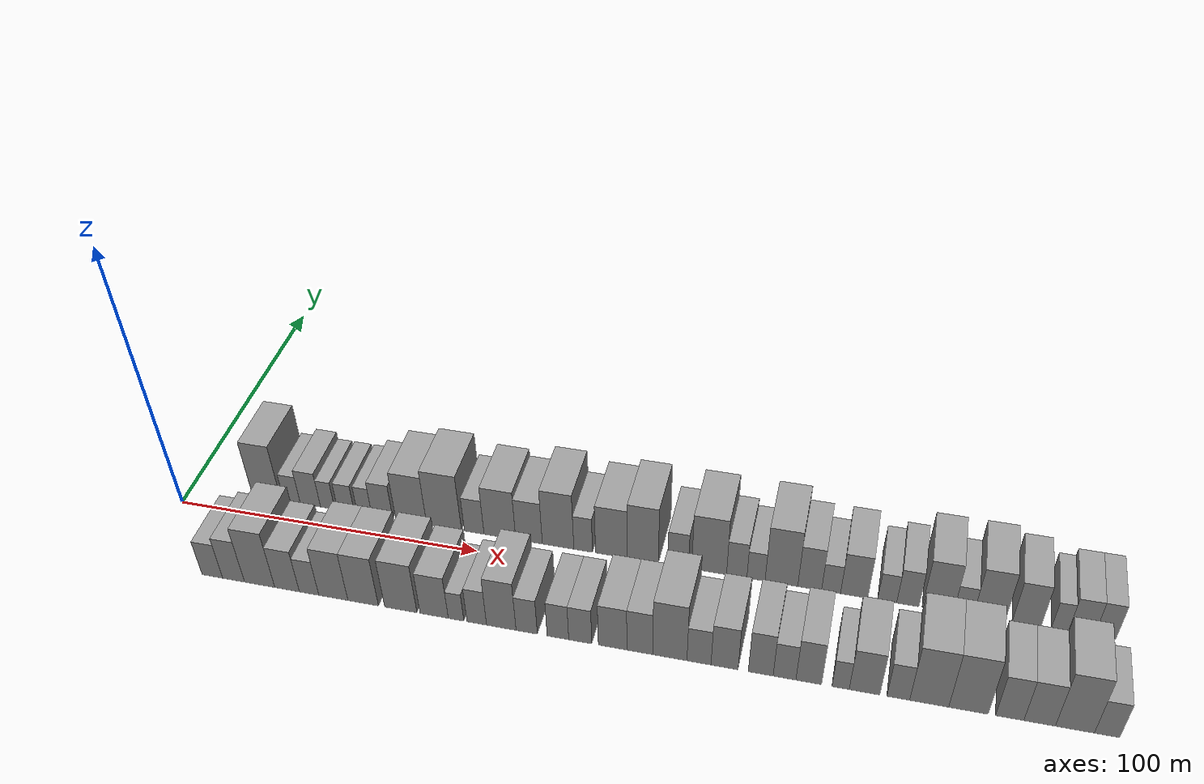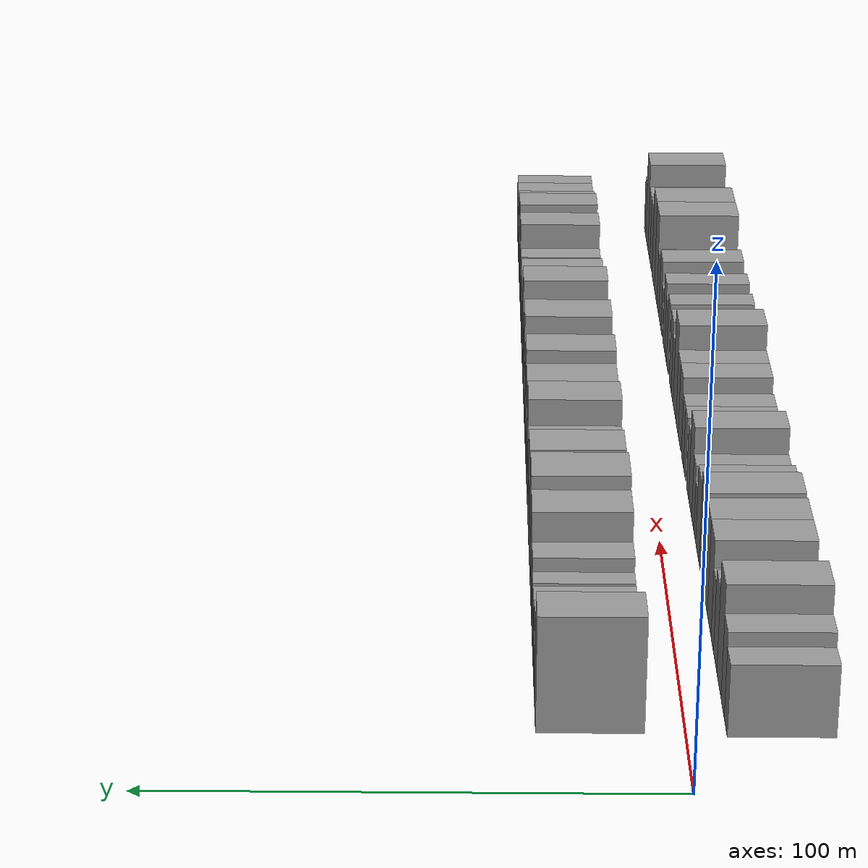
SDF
<sdf version="1.6">
 <world name="default">
  <scene>
   <sky><clouds><speed>12</speed></clouds></sky>
   <ambient>0.4 0.4 0.4 1</ambient>
   <background>0.7 0.7 0.7 1</background>
   <shadows>1</shadows>
  </scene>
  <gravity>0 0 -9.8066</gravity>
  <magnetic_field>6e-06 2.3e-05 -4.2e-05</magnetic_field>
  <physics default="0" name="default_physics" type="ode">
   <ode>
    <solver>
     <type>quick</type>
     <iters>10</iters>
     <sor>1.0</sor>
     <use_dynamic_moi_rescaling>0</use_dynamic_moi_rescaling>
    </solver>
    <constraints>
     <cfm>0</cfm>
     <erp>0.2</erp>
     <contact_max_correcting_vel>100</contact_max_correcting_vel>
     <contact_surface_layer>0.001</contact_surface_layer>
    </constraints>
   </ode>
   <max_step_size>0.004</max_step_size>
   <real_time_factor>1</real_time_factor>
   <real_time_update_rate>250</real_time_update_rate>
  </physics>
  <light name="sun" type="directional">
   <pose>0 0 10 0 0 0</pose>
   <diffuse>0.8 0.8 0.8 1</diffuse>
   <specular>0.2 0.2 0.2 1</specular>
   <attenuation>
    <range>1000</range>
    <constant>0.9</constant>
    <linear>0.01</linear>
    <quadratic>0.001</quadratic>
   </attenuation>
   <direction>-0.5 0.1 -0.9</direction>
  </light>
  <model name="building_1">
   <static>1</static>
   <pose>25.9712 17.5000 0 0.000000 0.000000 1.570796</pose>
   <link name="link">
    <pose>0 0 12.00 0 0 0</pose>
    <collision name="collision"><geometry><box><size>20.0000 9.9424 24.0000</size></box></geometry></collision>
    <visual name="visual">
     <cast_shadows>0</cast_shadows>
     <geometry><box><size>20.0000 9.9424 24.0000</size></box></geometry>
     <material>
      <script>
       <uri>model://grey_wall/materials/scripts</uri>
       <uri>model://grey_wall/materials/textures</uri>
       <name>vrc/grey_wall</name>
      </script>
     </material>
    </visual>
   </link>
  </model>
  <model name="building_2">
   <static>1</static>
   <pose>34.8163 17.5000 0 0.000000 0.000000 1.570796</pose>
   <link name="link">
    <pose>0 0 6.00 0 0 0</pose>
    <collision name="collision"><geometry><box><size>20.0000 5.7477 12.0000</size></box></geometry></collision>
    <visual name="visual">
     <cast_shadows>0</cast_shadows>
     <geometry><box><size>20.0000 5.7477 12.0000</size></box></geometry>
     <material>
      <script>
       <uri>model://grey_wall/materials/scripts</uri>
       <uri>model://grey_wall/materials/textures</uri>
       <name>vrc/grey_wall</name>
      </script>
     </material>
    </visual>
   </link>
  </model>
  <model name="building_3">
   <static>1</static>
   <pose>41.1859 17.5000 0 0.000000 0.000000 1.570796</pose>
   <link name="link">
    <pose>0 0 7.50 0 0 0</pose>
    <collision name="collision"><geometry><box><size>20.0000 6.9916 15.0000</size></box></geometry></collision>
    <visual name="visual">
     <cast_shadows>0</cast_shadows>
     <geometry><box><size>20.0000 6.9916 15.0000</size></box></geometry>
     <material>
      <script>
       <uri>model://grey_wall/materials/scripts</uri>
       <uri>model://grey_wall/materials/textures</uri>
       <name>vrc/grey_wall</name>
      </script>
     </material>
    </visual>
   </link>
  </model>
  <model name="building_4">
   <static>1</static>
   <pose>47.1388 17.5000 0 0.000000 0.000000 1.570796</pose>
   <link name="link">
    <pose>0 0 6.00 0 0 0</pose>
    <collision name="collision"><geometry><box><size>20.0000 4.9142 12.0000</size></box></geometry></collision>
    <visual name="visual">
     <cast_shadows>0</cast_shadows>
     <geometry><box><size>20.0000 4.9142 12.0000</size></box></geometry>
     <material>
      <script>
       <uri>model://grey_wall/materials/scripts</uri>
       <uri>model://grey_wall/materials/textures</uri>
       <name>vrc/grey_wall</name>
      </script>
     </material>
    </visual>
   </link>
  </model>
  <model name="building_5">
   <static>1</static>
   <pose>53.4631 17.5000 0 0.000000 0.000000 1.570796</pose>
   <link name="link">
    <pose>0 0 6.00 0 0 0</pose>
    <collision name="collision"><geometry><box><size>20.0000 5.7344 12.0000</size></box></geometry></collision>
    <visual name="visual">
     <cast_shadows>0</cast_shadows>
     <geometry><box><size>20.0000 5.7344 12.0000</size></box></geometry>
     <material>
      <script>
       <uri>model://grey_wall/materials/scripts</uri>
       <uri>model://grey_wall/materials/textures</uri>
       <name>vrc/grey_wall</name>
      </script>
     </material>
    </visual>
   </link>
  </model>
  <model name="building_6">
   <static>1</static>
   <pose>59.8176 17.5000 0 0.000000 0.000000 1.570796</pose>
   <link name="link">
    <pose>0 0 6.00 0 0 0</pose>
    <collision name="collision"><geometry><box><size>20.0000 4.9748 12.0000</size></box></geometry></collision>
    <visual name="visual">
     <cast_shadows>0</cast_shadows>
     <geometry><box><size>20.0000 4.9748 12.0000</size></box></geometry>
     <material>
      <script>
       <uri>model://grey_wall/materials/scripts</uri>
       <uri>model://grey_wall/materials/textures</uri>
       <name>vrc/grey_wall</name>
      </script>
     </material>
    </visual>
   </link>
  </model>
  <model name="building_7">
   <static>1</static>
   <pose>65.8682 17.5000 0 0.000000 0.000000 1.570796</pose>
   <link name="link">
    <pose>0 0 7.50 0 0 0</pose>
    <collision name="collision"><geometry><box><size>20.0000 7.1263 15.0000</size></box></geometry></collision>
    <visual name="visual">
     <cast_shadows>0</cast_shadows>
     <geometry><box><size>20.0000 7.1263 15.0000</size></box></geometry>
     <material>
      <script>
       <uri>model://grey_wall/materials/scripts</uri>
       <uri>model://grey_wall/materials/textures</uri>
       <name>vrc/grey_wall</name>
      </script>
     </material>
    </visual>
   </link>
  </model>
  <model name="building_8">
   <static>1</static>
   <pose>75.6446 17.5000 0 0.000000 0.000000 1.570796</pose>
   <link name="link">
    <pose>0 0 10.50 0 0 0</pose>
    <collision name="collision"><geometry><box><size>20.0000 10.4266 21.0000</size></box></geometry></collision>
    <visual name="visual">
     <cast_shadows>0</cast_shadows>
     <geometry><box><size>20.0000 10.4266 21.0000</size></box></geometry>
     <material>
      <script>
       <uri>model://grey_wall/materials/scripts</uri>
       <uri>model://grey_wall/materials/textures</uri>
       <name>vrc/grey_wall</name>
      </script>
     </material>
    </visual>
   </link>
  </model>
  <model name="building_9">
   <static>1</static>
   <pose>86.6826 17.5000 0 0.000000 0.000000 1.570796</pose>
   <link name="link">
    <pose>0 0 12.00 0 0 0</pose>
    <collision name="collision"><geometry><box><size>20.0000 11.6493 24.0000</size></box></geometry></collision>
    <visual name="visual">
     <cast_shadows>0</cast_shadows>
     <geometry><box><size>20.0000 11.6493 24.0000</size></box></geometry>
     <material>
      <script>
       <uri>model://grey_wall/materials/scripts</uri>
       <uri>model://grey_wall/materials/textures</uri>
       <name>vrc/grey_wall</name>
      </script>
     </material>
    </visual>
   </link>
  </model>
  <model name="building_10">
   <static>1</static>
   <pose>96.7625 17.5000 0 0.000000 0.000000 1.570796</pose>
   <link name="link">
    <pose>0 0 7.50 0 0 0</pose>
    <collision name="collision"><geometry><box><size>20.0000 6.5105 15.0000</size></box></geometry></collision>
    <visual name="visual">
     <cast_shadows>0</cast_shadows>
     <geometry><box><size>20.0000 6.5105 15.0000</size></box></geometry>
     <material>
      <script>
       <uri>model://grey_wall/materials/scripts</uri>
       <uri>model://grey_wall/materials/textures</uri>
       <name>vrc/grey_wall</name>
      </script>
     </material>
    </visual>
   </link>
  </model>
  <model name="building_11">
   <static>1</static>
   <pose>105.2571 17.5000 0 0.000000 0.000000 1.570796</pose>
   <link name="link">
    <pose>0 0 10.50 0 0 0</pose>
    <collision name="collision"><geometry><box><size>20.0000 10.4787 21.0000</size></box></geometry></collision>
    <visual name="visual">
     <cast_shadows>0</cast_shadows>
     <geometry><box><size>20.0000 10.4787 21.0000</size></box></geometry>
     <material>
      <script>
       <uri>model://grey_wall/materials/scripts</uri>
       <uri>model://grey_wall/materials/textures</uri>
       <name>vrc/grey_wall</name>
      </script>
     </material>
    </visual>
   </link>
  </model>
  <model name="building_12">
   <static>1</static>
   <pose>114.8549 17.5000 0 0.000000 0.000000 1.570796</pose>
   <link name="link">
    <pose>0 0 9.00 0 0 0</pose>
    <collision name="collision"><geometry><box><size>20.0000 8.7168 18.0000</size></box></geometry></collision>
    <visual name="visual">
     <cast_shadows>0</cast_shadows>
     <geometry><box><size>20.0000 8.7168 18.0000</size></box></geometry>
     <material>
      <script>
       <uri>model://grey_wall/materials/scripts</uri>
       <uri>model://grey_wall/materials/textures</uri>
       <name>vrc/grey_wall</name>
      </script>
     </material>
    </visual>
   </link>
  </model>
  <model name="building_13">
   <static>1</static>
   <pose>124.3384 17.5000 0 0.000000 0.000000 1.570796</pose>
   <link name="link">
    <pose>0 0 12.00 0 0 0</pose>
    <collision name="collision"><geometry><box><size>20.0000 10.2502 24.0000</size></box></geometry></collision>
    <visual name="visual">
     <cast_shadows>0</cast_shadows>
     <geometry><box><size>20.0000 10.2502 24.0000</size></box></geometry>
     <material>
      <script>
       <uri>model://grey_wall/materials/scripts</uri>
       <uri>model://grey_wall/materials/textures</uri>
       <name>vrc/grey_wall</name>
      </script>
     </material>
    </visual>
   </link>
  </model>
  <model name="building_14">
   <static>1</static>
   <pose>132.4854 17.5000 0 0.000000 0.000000 1.570796</pose>
   <link name="link">
    <pose>0 0 7.50 0 0 0</pose>
    <collision name="collision"><geometry><box><size>20.0000 6.0437 15.0000</size></box></geometry></collision>
    <visual name="visual">
     <cast_shadows>0</cast_shadows>
     <geometry><box><size>20.0000 6.0437 15.0000</size></box></geometry>
     <material>
      <script>
       <uri>model://grey_wall/materials/scripts</uri>
       <uri>model://grey_wall/materials/textures</uri>
       <name>vrc/grey_wall</name>
      </script>
     </material>
    </visual>
   </link>
  </model>
  <model name="building_15">
   <static>1</static>
   <pose>141.6110 17.5000 0 0.000000 0.000000 1.570796</pose>
   <link name="link">
    <pose>0 0 10.50 0 0 0</pose>
    <collision name="collision"><geometry><box><size>20.0000 10.2076 21.0000</size></box></geometry></collision>
    <visual name="visual">
     <cast_shadows>0</cast_shadows>
     <geometry><box><size>20.0000 10.2076 21.0000</size></box></geometry>
     <material>
      <script>
       <uri>model://grey_wall/materials/scripts</uri>
       <uri>model://grey_wall/materials/textures</uri>
       <name>vrc/grey_wall</name>
      </script>
     </material>
    </visual>
   </link>
  </model>
  <model name="building_16">
   <static>1</static>
   <pose>151.6716 17.5000 0 0.000000 0.000000 1.570796</pose>
   <link name="link">
    <pose>0 0 12.00 0 0 0</pose>
    <collision name="collision"><geometry><box><size>20.0000 9.9136 24.0000</size></box></geometry></collision>
    <visual name="visual">
     <cast_shadows>0</cast_shadows>
     <geometry><box><size>20.0000 9.9136 24.0000</size></box></geometry>
     <material>
      <script>
       <uri>model://grey_wall/materials/scripts</uri>
       <uri>model://grey_wall/materials/textures</uri>
       <name>vrc/grey_wall</name>
      </script>
     </material>
    </visual>
   </link>
  </model>
  <model name="building_17">
   <static>1</static>
   <pose>162.9030 17.5000 0 0.000000 0.000000 1.570796</pose>
   <link name="link">
    <pose>0 0 7.50 0 0 0</pose>
    <collision name="collision"><geometry><box><size>20.0000 6.5493 15.0000</size></box></geometry></collision>
    <visual name="visual">
     <cast_shadows>0</cast_shadows>
     <geometry><box><size>20.0000 6.5493 15.0000</size></box></geometry>
     <material>
      <script>
       <uri>model://grey_wall/materials/scripts</uri>
       <uri>model://grey_wall/materials/textures</uri>
       <name>vrc/grey_wall</name>
      </script>
     </material>
    </visual>
   </link>
  </model>
  <model name="building_18">
   <static>1</static>
   <pose>172.6414 17.5000 0 0.000000 0.000000 1.570796</pose>
   <link name="link">
    <pose>0 0 12.00 0 0 0</pose>
    <collision name="collision"><geometry><box><size>20.0000 10.9275 24.0000</size></box></geometry></collision>
    <visual name="visual">
     <cast_shadows>0</cast_shadows>
     <geometry><box><size>20.0000 10.9275 24.0000</size></box></geometry>
     <material>
      <script>
       <uri>model://grey_wall/materials/scripts</uri>
       <uri>model://grey_wall/materials/textures</uri>
       <name>vrc/grey_wall</name>
      </script>
     </material>
    </visual>
   </link>
  </model>
  <model name="building_19">
   <static>1</static>
   <pose>181.2787 17.5000 0 0.000000 0.000000 1.570796</pose>
   <link name="link">
    <pose>0 0 7.50 0 0 0</pose>
    <collision name="collision"><geometry><box><size>20.0000 6.3471 15.0000</size></box></geometry></collision>
    <visual name="visual">
     <cast_shadows>0</cast_shadows>
     <geometry><box><size>20.0000 6.3471 15.0000</size></box></geometry>
     <material>
      <script>
       <uri>model://grey_wall/materials/scripts</uri>
       <uri>model://grey_wall/materials/textures</uri>
       <name>vrc/grey_wall</name>
      </script>
     </material>
    </visual>
   </link>
  </model>
  <model name="building_20">
   <static>1</static>
   <pose>187.2736 17.5000 0 0.000000 0.000000 1.570796</pose>
   <link name="link">
    <pose>0 0 6.00 0 0 0</pose>
    <collision name="collision"><geometry><box><size>20.0000 5.6426 12.0000</size></box></geometry></collision>
    <visual name="visual">
     <cast_shadows>0</cast_shadows>
     <geometry><box><size>20.0000 5.6426 12.0000</size></box></geometry>
     <material>
      <script>
       <uri>model://grey_wall/materials/scripts</uri>
       <uri>model://grey_wall/materials/textures</uri>
       <name>vrc/grey_wall</name>
      </script>
     </material>
    </visual>
   </link>
  </model>
  <model name="building_21">
   <static>1</static>
   <pose>195.1427 17.5000 0 0.000000 0.000000 1.570796</pose>
   <link name="link">
    <pose>0 0 12.00 0 0 0</pose>
    <collision name="collision"><geometry><box><size>20.0000 10.0957 24.0000</size></box></geometry></collision>
    <visual name="visual">
     <cast_shadows>0</cast_shadows>
     <geometry><box><size>20.0000 10.0957 24.0000</size></box></geometry>
     <material>
      <script>
       <uri>model://grey_wall/materials/scripts</uri>
       <uri>model://grey_wall/materials/textures</uri>
       <name>vrc/grey_wall</name>
      </script>
     </material>
    </visual>
   </link>
  </model>
  <model name="building_22">
   <static>1</static>
   <pose>203.8434 17.5000 0 0.000000 0.000000 1.570796</pose>
   <link name="link">
    <pose>0 0 9.00 0 0 0</pose>
    <collision name="collision"><geometry><box><size>20.0000 7.3057 18.0000</size></box></geometry></collision>
    <visual name="visual">
     <cast_shadows>0</cast_shadows>
     <geometry><box><size>20.0000 7.3057 18.0000</size></box></geometry>
     <material>
      <script>
       <uri>model://grey_wall/materials/scripts</uri>
       <uri>model://grey_wall/materials/textures</uri>
       <name>vrc/grey_wall</name>
      </script>
     </material>
    </visual>
   </link>
  </model>
  <model name="building_23">
   <static>1</static>
   <pose>210.3932 17.5000 0 0.000000 0.000000 1.570796</pose>
   <link name="link">
    <pose>0 0 6.00 0 0 0</pose>
    <collision name="collision"><geometry><box><size>20.0000 5.7938 12.0000</size></box></geometry></collision>
    <visual name="visual">
     <cast_shadows>0</cast_shadows>
     <geometry><box><size>20.0000 5.7938 12.0000</size></box></geometry>
     <material>
      <script>
       <uri>model://grey_wall/materials/scripts</uri>
       <uri>model://grey_wall/materials/textures</uri>
       <name>vrc/grey_wall</name>
      </script>
     </material>
    </visual>
   </link>
  </model>
  <model name="building_24">
   <static>1</static>
   <pose>217.4280 17.5000 0 0.000000 0.000000 1.570796</pose>
   <link name="link">
    <pose>0 0 9.00 0 0 0</pose>
    <collision name="collision"><geometry><box><size>20.0000 8.2758 18.0000</size></box></geometry></collision>
    <visual name="visual">
     <cast_shadows>0</cast_shadows>
     <geometry><box><size>20.0000 8.2758 18.0000</size></box></geometry>
     <material>
      <script>
       <uri>model://grey_wall/materials/scripts</uri>
       <uri>model://grey_wall/materials/textures</uri>
       <name>vrc/grey_wall</name>
      </script>
     </material>
    </visual>
   </link>
  </model>
  <model name="building_25">
   <static>1</static>
   <pose>227.4150 17.5000 0 0.000000 0.000000 1.570796</pose>
   <link name="link">
    <pose>0 0 6.00 0 0 0</pose>
    <collision name="collision"><geometry><box><size>20.0000 5.6981 12.0000</size></box></geometry></collision>
    <visual name="visual">
     <cast_shadows>0</cast_shadows>
     <geometry><box><size>20.0000 5.6981 12.0000</size></box></geometry>
     <material>
      <script>
       <uri>model://grey_wall/materials/scripts</uri>
       <uri>model://grey_wall/materials/textures</uri>
       <name>vrc/grey_wall</name>
      </script>
     </material>
    </visual>
   </link>
  </model>
  <model name="building_26">
   <static>1</static>
   <pose>233.5926 17.5000 0 0.000000 0.000000 1.570796</pose>
   <link name="link">
    <pose>0 0 7.50 0 0 0</pose>
    <collision name="collision"><geometry><box><size>20.0000 6.6571 15.0000</size></box></geometry></collision>
    <visual name="visual">
     <cast_shadows>0</cast_shadows>
     <geometry><box><size>20.0000 6.6571 15.0000</size></box></geometry>
     <material>
      <script>
       <uri>model://grey_wall/materials/scripts</uri>
       <uri>model://grey_wall/materials/textures</uri>
       <name>vrc/grey_wall</name>
      </script>
     </material>
    </visual>
   </link>
  </model>
  <model name="building_27">
   <static>1</static>
   <pose>242.5889 17.5000 0 0.000000 0.000000 1.570796</pose>
   <link name="link">
    <pose>0 0 10.50 0 0 0</pose>
    <collision name="collision"><geometry><box><size>20.0000 9.3354 21.0000</size></box></geometry></collision>
    <visual name="visual">
     <cast_shadows>0</cast_shadows>
     <geometry><box><size>20.0000 9.3354 21.0000</size></box></geometry>
     <material>
      <script>
       <uri>model://grey_wall/materials/scripts</uri>
       <uri>model://grey_wall/materials/textures</uri>
       <name>vrc/grey_wall</name>
      </script>
     </material>
    </visual>
   </link>
  </model>
  <model name="building_28">
   <static>1</static>
   <pose>250.1770 17.5000 0 0.000000 0.000000 1.570796</pose>
   <link name="link">
    <pose>0 0 6.00 0 0 0</pose>
    <collision name="collision"><geometry><box><size>20.0000 5.8409 12.0000</size></box></geometry></collision>
    <visual name="visual">
     <cast_shadows>0</cast_shadows>
     <geometry><box><size>20.0000 5.8409 12.0000</size></box></geometry>
     <material>
      <script>
       <uri>model://grey_wall/materials/scripts</uri>
       <uri>model://grey_wall/materials/textures</uri>
       <name>vrc/grey_wall</name>
      </script>
     </material>
    </visual>
   </link>
  </model>
  <model name="building_29">
   <static>1</static>
   <pose>257.8004 17.5000 0 0.000000 0.000000 1.570796</pose>
   <link name="link">
    <pose>0 0 10.50 0 0 0</pose>
    <collision name="collision"><geometry><box><size>20.0000 9.4058 21.0000</size></box></geometry></collision>
    <visual name="visual">
     <cast_shadows>0</cast_shadows>
     <geometry><box><size>20.0000 9.4058 21.0000</size></box></geometry>
     <material>
      <script>
       <uri>model://grey_wall/materials/scripts</uri>
       <uri>model://grey_wall/materials/textures</uri>
       <name>vrc/grey_wall</name>
      </script>
     </material>
    </visual>
   </link>
  </model>
  <model name="building_30">
   <static>1</static>
   <pose>268.7060 17.5000 0 0.000000 0.000000 1.570796</pose>
   <link name="link">
    <pose>0 0 9.00 0 0 0</pose>
    <collision name="collision"><geometry><box><size>20.0000 8.4054 18.0000</size></box></geometry></collision>
    <visual name="visual">
     <cast_shadows>0</cast_shadows>
     <geometry><box><size>20.0000 8.4054 18.0000</size></box></geometry>
     <material>
      <script>
       <uri>model://grey_wall/materials/scripts</uri>
       <uri>model://grey_wall/materials/textures</uri>
       <name>vrc/grey_wall</name>
      </script>
     </material>
    </visual>
   </link>
  </model>
  <model name="building_31">
   <static>1</static>
   <pose>278.3729 17.5000 0 0.000000 0.000000 1.570796</pose>
   <link name="link">
    <pose>0 0 6.00 0 0 0</pose>
    <collision name="collision"><geometry><box><size>20.0000 4.9284 12.0000</size></box></geometry></collision>
    <visual name="visual">
     <cast_shadows>0</cast_shadows>
     <geometry><box><size>20.0000 4.9284 12.0000</size></box></geometry>
     <material>
      <script>
       <uri>model://grey_wall/materials/scripts</uri>
       <uri>model://grey_wall/materials/textures</uri>
       <name>vrc/grey_wall</name>
      </script>
     </material>
    </visual>
   </link>
  </model>
  <model name="building_32">
   <static>1</static>
   <pose>284.5853 17.5000 0 0.000000 0.000000 1.570796</pose>
   <link name="link">
    <pose>0 0 7.50 0 0 0</pose>
    <collision name="collision"><geometry><box><size>20.0000 7.4963 15.0000</size></box></geometry></collision>
    <visual name="visual">
     <cast_shadows>0</cast_shadows>
     <geometry><box><size>20.0000 7.4963 15.0000</size></box></geometry>
     <material>
      <script>
       <uri>model://grey_wall/materials/scripts</uri>
       <uri>model://grey_wall/materials/textures</uri>
       <name>vrc/grey_wall</name>
      </script>
     </material>
    </visual>
   </link>
  </model>
  <model name="building_33">
   <static>1</static>
   <pose>291.4075 17.5000 0 0.000000 0.000000 1.570796</pose>
   <link name="link">
    <pose>0 0 7.50 0 0 0</pose>
    <collision name="collision"><geometry><box><size>20.0000 6.1482 15.0000</size></box></geometry></collision>
    <visual name="visual">
     <cast_shadows>0</cast_shadows>
     <geometry><box><size>20.0000 6.1482 15.0000</size></box></geometry>
     <material>
      <script>
       <uri>model://grey_wall/materials/scripts</uri>
       <uri>model://grey_wall/materials/textures</uri>
       <name>vrc/grey_wall</name>
      </script>
     </material>
    </visual>
   </link>
  </model>
  <model name="building_34">
   <static>1</static>
   <pose>23.4213 -17.5000 0 0.000000 0.000000 1.570796</pose>
   <link name="link">
    <pose>0 0 7.50 0 0 0</pose>
    <collision name="collision"><geometry><box><size>20.0000 6.8426 15.0000</size></box></geometry></collision>
    <visual name="visual">
     <cast_shadows>0</cast_shadows>
     <geometry><box><size>20.0000 6.8426 15.0000</size></box></geometry>
     <material>
      <script>
       <uri>model://grey_wall/materials/scripts</uri>
       <uri>model://grey_wall/materials/textures</uri>
       <name>vrc/grey_wall</name>
      </script>
     </material>
    </visual>
   </link>
  </model>
  <model name="building_35">
   <static>1</static>
   <pose>30.4554 -17.5000 0 0.000000 0.000000 1.570796</pose>
   <link name="link">
    <pose>0 0 9.00 0 0 0</pose>
    <collision name="collision"><geometry><box><size>20.0000 7.2256 18.0000</size></box></geometry></collision>
    <visual name="visual">
     <cast_shadows>0</cast_shadows>
     <geometry><box><size>20.0000 7.2256 18.0000</size></box></geometry>
     <material>
      <script>
       <uri>model://grey_wall/materials/scripts</uri>
       <uri>model://grey_wall/materials/textures</uri>
       <name>vrc/grey_wall</name>
      </script>
     </material>
    </visual>
   </link>
  </model>
  <model name="building_36">
   <static>1</static>
   <pose>39.0456 -17.5000 0 0.000000 0.000000 1.570796</pose>
   <link name="link">
    <pose>0 0 12.00 0 0 0</pose>
    <collision name="collision"><geometry><box><size>20.0000 9.9546 24.0000</size></box></geometry></collision>
    <visual name="visual">
     <cast_shadows>0</cast_shadows>
     <geometry><box><size>20.0000 9.9546 24.0000</size></box></geometry>
     <material>
      <script>
       <uri>model://grey_wall/materials/scripts</uri>
       <uri>model://grey_wall/materials/textures</uri>
       <name>vrc/grey_wall</name>
      </script>
     </material>
    </visual>
   </link>
  </model>
  <model name="building_37">
   <static>1</static>
   <pose>48.0457 -17.5000 0 0.000000 0.000000 1.570796</pose>
   <link name="link">
    <pose>0 0 9.00 0 0 0</pose>
    <collision name="collision"><geometry><box><size>20.0000 8.0457 18.0000</size></box></geometry></collision>
    <visual name="visual">
     <cast_shadows>0</cast_shadows>
     <geometry><box><size>20.0000 8.0457 18.0000</size></box></geometry>
     <material>
      <script>
       <uri>model://grey_wall/materials/scripts</uri>
       <uri>model://grey_wall/materials/textures</uri>
       <name>vrc/grey_wall</name>
      </script>
     </material>
    </visual>
   </link>
  </model>
  <model name="building_38">
   <static>1</static>
   <pose>55.2150 -17.5000 0 0.000000 0.000000 1.570796</pose>
   <link name="link">
    <pose>0 0 7.50 0 0 0</pose>
    <collision name="collision"><geometry><box><size>20.0000 6.2928 15.0000</size></box></geometry></collision>
    <visual name="visual">
     <cast_shadows>0</cast_shadows>
     <geometry><box><size>20.0000 6.2928 15.0000</size></box></geometry>
     <material>
      <script>
       <uri>model://grey_wall/materials/scripts</uri>
       <uri>model://grey_wall/materials/textures</uri>
       <name>vrc/grey_wall</name>
      </script>
     </material>
    </visual>
   </link>
  </model>
  <model name="building_39">
   <static>1</static>
   <pose>63.0596 -17.5000 0 0.000000 0.000000 1.570796</pose>
   <link name="link">
    <pose>0 0 10.50 0 0 0</pose>
    <collision name="collision"><geometry><box><size>20.0000 9.3964 21.0000</size></box></geometry></collision>
    <visual name="visual">
     <cast_shadows>0</cast_shadows>
     <geometry><box><size>20.0000 9.3964 21.0000</size></box></geometry>
     <material>
      <script>
       <uri>model://grey_wall/materials/scripts</uri>
       <uri>model://grey_wall/materials/textures</uri>
       <name>vrc/grey_wall</name>
      </script>
     </material>
    </visual>
   </link>
  </model>
  <model name="building_40">
   <static>1</static>
   <pose>72.6556 -17.5000 0 0.000000 0.000000 1.570796</pose>
   <link name="link">
    <pose>0 0 10.50 0 0 0</pose>
    <collision name="collision"><geometry><box><size>20.0000 9.7955 21.0000</size></box></geometry></collision>
    <visual name="visual">
     <cast_shadows>0</cast_shadows>
     <geometry><box><size>20.0000 9.7955 21.0000</size></box></geometry>
     <material>
      <script>
       <uri>model://grey_wall/materials/scripts</uri>
       <uri>model://grey_wall/materials/textures</uri>
       <name>vrc/grey_wall</name>
      </script>
     </material>
    </visual>
   </link>
  </model>
  <model name="building_41">
   <static>1</static>
   <pose>84.6674 -17.5000 0 0.000000 0.000000 1.570796</pose>
   <link name="link">
    <pose>0 0 10.50 0 0 0</pose>
    <collision name="collision"><geometry><box><size>20.0000 10.2282 21.0000</size></box></geometry></collision>
    <visual name="visual">
     <cast_shadows>0</cast_shadows>
     <geometry><box><size>20.0000 10.2282 21.0000</size></box></geometry>
     <material>
      <script>
       <uri>model://grey_wall/materials/scripts</uri>
       <uri>model://grey_wall/materials/textures</uri>
       <name>vrc/grey_wall</name>
      </script>
     </material>
    </visual>
   </link>
  </model>
  <model name="building_42">
   <static>1</static>
   <pose>95.2177 -17.5000 0 0.000000 0.000000 1.570796</pose>
   <link name="link">
    <pose>0 0 9.00 0 0 0</pose>
    <collision name="collision"><geometry><box><size>20.0000 8.8724 18.0000</size></box></geometry></collision>
    <visual name="visual">
     <cast_shadows>0</cast_shadows>
     <geometry><box><size>20.0000 8.8724 18.0000</size></box></geometry>
     <material>
      <script>
       <uri>model://grey_wall/materials/scripts</uri>
       <uri>model://grey_wall/materials/textures</uri>
       <name>vrc/grey_wall</name>
      </script>
     </material>
    </visual>
   </link>
  </model>
  <model name="building_43">
   <static>1</static>
   <pose>102.0926 -17.5000 0 0.000000 0.000000 1.570796</pose>
   <link name="link">
    <pose>0 0 6.00 0 0 0</pose>
    <collision name="collision"><geometry><box><size>20.0000 4.8774 12.0000</size></box></geometry></collision>
    <visual name="visual">
     <cast_shadows>0</cast_shadows>
     <geometry><box><size>20.0000 4.8774 12.0000</size></box></geometry>
     <material>
      <script>
       <uri>model://grey_wall/materials/scripts</uri>
       <uri>model://grey_wall/materials/textures</uri>
       <name>vrc/grey_wall</name>
      </script>
     </material>
    </visual>
   </link>
  </model>
  <model name="building_44">
   <static>1</static>
   <pose>108.5644 -17.5000 0 0.000000 0.000000 1.570796</pose>
   <link name="link">
    <pose>0 0 7.50 0 0 0</pose>
    <collision name="collision"><geometry><box><size>20.0000 6.0662 15.0000</size></box></geometry></collision>
    <visual name="visual">
     <cast_shadows>0</cast_shadows>
     <geometry><box><size>20.0000 6.0662 15.0000</size></box></geometry>
     <material>
      <script>
       <uri>model://grey_wall/materials/scripts</uri>
       <uri>model://grey_wall/materials/textures</uri>
       <name>vrc/grey_wall</name>
      </script>
     </material>
    </visual>
   </link>
  </model>
  <model name="building_45">
   <static>1</static>
   <pose>116.1612 -17.5000 0 0.000000 0.000000 1.570796</pose>
   <link name="link">
    <pose>0 0 10.50 0 0 0</pose>
    <collision name="collision"><geometry><box><size>20.0000 9.1274 21.0000</size></box></geometry></collision>
    <visual name="visual">
     <cast_shadows>0</cast_shadows>
     <geometry><box><size>20.0000 9.1274 21.0000</size></box></geometry>
     <material>
      <script>
       <uri>model://grey_wall/materials/scripts</uri>
       <uri>model://grey_wall/materials/textures</uri>
       <name>vrc/grey_wall</name>
      </script>
     </material>
    </visual>
   </link>
  </model>
  <model name="building_46">
   <static>1</static>
   <pose>124.0080 -17.5000 0 0.000000 0.000000 1.570796</pose>
   <link name="link">
    <pose>0 0 7.50 0 0 0</pose>
    <collision name="collision"><geometry><box><size>20.0000 6.5663 15.0000</size></box></geometry></collision>
    <visual name="visual">
     <cast_shadows>0</cast_shadows>
     <geometry><box><size>20.0000 6.5663 15.0000</size></box></geometry>
     <material>
      <script>
       <uri>model://grey_wall/materials/scripts</uri>
       <uri>model://grey_wall/materials/textures</uri>
       <name>vrc/grey_wall</name>
      </script>
     </material>
    </visual>
   </link>
  </model>
  <model name="building_47">
   <static>1</static>
   <pose>133.5781 -17.5000 0 0.000000 0.000000 1.570796</pose>
   <link name="link">
    <pose>0 0 7.50 0 0 0</pose>
    <collision name="collision"><geometry><box><size>20.0000 6.5737 15.0000</size></box></geometry></collision>
    <visual name="visual">
     <cast_shadows>0</cast_shadows>
     <geometry><box><size>20.0000 6.5737 15.0000</size></box></geometry>
     <material>
      <script>
       <uri>model://grey_wall/materials/scripts</uri>
       <uri>model://grey_wall/materials/textures</uri>
       <name>vrc/grey_wall</name>
      </script>
     </material>
    </visual>
   </link>
  </model>
  <model name="building_48">
   <static>1</static>
   <pose>140.3663 -17.5000 0 0.000000 0.000000 1.570796</pose>
   <link name="link">
    <pose>0 0 7.50 0 0 0</pose>
    <collision name="collision"><geometry><box><size>20.0000 7.0029 15.0000</size></box></geometry></collision>
    <visual name="visual">
     <cast_shadows>0</cast_shadows>
     <geometry><box><size>20.0000 7.0029 15.0000</size></box></geometry>
     <material>
      <script>
       <uri>model://grey_wall/materials/scripts</uri>
       <uri>model://grey_wall/materials/textures</uri>
       <name>vrc/grey_wall</name>
      </script>
     </material>
    </visual>
   </link>
  </model>
  <model name="building_49">
   <static>1</static>
   <pose>150.1476 -17.5000 0 0.000000 0.000000 1.570796</pose>
   <link name="link">
    <pose>0 0 9.00 0 0 0</pose>
    <collision name="collision"><geometry><box><size>20.0000 8.5596 18.0000</size></box></geometry></collision>
    <visual name="visual">
     <cast_shadows>0</cast_shadows>
     <geometry><box><size>20.0000 8.5596 18.0000</size></box></geometry>
     <material>
      <script>
       <uri>model://grey_wall/materials/scripts</uri>
       <uri>model://grey_wall/materials/textures</uri>
       <name>vrc/grey_wall</name>
      </script>
     </material>
    </visual>
   </link>
  </model>
  <model name="building_50">
   <static>1</static>
   <pose>158.2907 -17.5000 0 0.000000 0.000000 1.570796</pose>
   <link name="link">
    <pose>0 0 9.00 0 0 0</pose>
    <collision name="collision"><geometry><box><size>20.0000 7.7266 18.0000</size></box></geometry></collision>
    <visual name="visual">
     <cast_shadows>0</cast_shadows>
     <geometry><box><size>20.0000 7.7266 18.0000</size></box></geometry>
     <material>
      <script>
       <uri>model://grey_wall/materials/scripts</uri>
       <uri>model://grey_wall/materials/textures</uri>
       <name>vrc/grey_wall</name>
      </script>
     </material>
    </visual>
   </link>
  </model>
  <model name="building_51">
   <static>1</static>
   <pose>167.2499 -17.5000 0 0.000000 0.000000 1.570796</pose>
   <link name="link">
    <pose>0 0 12.00 0 0 0</pose>
    <collision name="collision"><geometry><box><size>20.0000 10.1919 24.0000</size></box></geometry></collision>
    <visual name="visual">
     <cast_shadows>0</cast_shadows>
     <geometry><box><size>20.0000 10.1919 24.0000</size></box></geometry>
     <material>
      <script>
       <uri>model://grey_wall/materials/scripts</uri>
       <uri>model://grey_wall/materials/textures</uri>
       <name>vrc/grey_wall</name>
      </script>
     </material>
    </visual>
   </link>
  </model>
  <model name="building_52">
   <static>1</static>
   <pose>175.9003 -17.5000 0 0.000000 0.000000 1.570796</pose>
   <link name="link">
    <pose>0 0 7.50 0 0 0</pose>
    <collision name="collision"><geometry><box><size>20.0000 7.1090 15.0000</size></box></geometry></collision>
    <visual name="visual">
     <cast_shadows>0</cast_shadows>
     <geometry><box><size>20.0000 7.1090 15.0000</size></box></geometry>
     <material>
      <script>
       <uri>model://grey_wall/materials/scripts</uri>
       <uri>model://grey_wall/materials/textures</uri>
       <name>vrc/grey_wall</name>
      </script>
     </material>
    </visual>
   </link>
  </model>
  <model name="building_53">
   <static>1</static>
   <pose>183.4183 -17.5000 0 0.000000 0.000000 1.570796</pose>
   <link name="link">
    <pose>0 0 9.00 0 0 0</pose>
    <collision name="collision"><geometry><box><size>20.0000 7.9270 18.0000</size></box></geometry></collision>
    <visual name="visual">
     <cast_shadows>0</cast_shadows>
     <geometry><box><size>20.0000 7.9270 18.0000</size></box></geometry>
     <material>
      <script>
       <uri>model://grey_wall/materials/scripts</uri>
       <uri>model://grey_wall/materials/textures</uri>
       <name>vrc/grey_wall</name>
      </script>
     </material>
    </visual>
   </link>
  </model>
  <model name="building_54">
   <static>1</static>
   <pose>193.9921 -17.5000 0 0.000000 0.000000 1.570796</pose>
   <link name="link">
    <pose>0 0 9.00 0 0 0</pose>
    <collision name="collision"><geometry><box><size>20.0000 7.2206 18.0000</size></box></geometry></collision>
    <visual name="visual">
     <cast_shadows>0</cast_shadows>
     <geometry><box><size>20.0000 7.2206 18.0000</size></box></geometry>
     <material>
      <script>
       <uri>model://grey_wall/materials/scripts</uri>
       <uri>model://grey_wall/materials/textures</uri>
       <name>vrc/grey_wall</name>
      </script>
     </material>
    </visual>
   </link>
  </model>
  <model name="building_55">
   <static>1</static>
   <pose>200.8921 -17.5000 0 0.000000 0.000000 1.570796</pose>
   <link name="link">
    <pose>0 0 7.50 0 0 0</pose>
    <collision name="collision"><geometry><box><size>20.0000 6.5794 15.0000</size></box></geometry></collision>
    <visual name="visual">
     <cast_shadows>0</cast_shadows>
     <geometry><box><size>20.0000 6.5794 15.0000</size></box></geometry>
     <material>
      <script>
       <uri>model://grey_wall/materials/scripts</uri>
       <uri>model://grey_wall/materials/textures</uri>
       <name>vrc/grey_wall</name>
      </script>
     </material>
    </visual>
   </link>
  </model>
  <model name="building_56">
   <static>1</static>
   <pose>207.8670 -17.5000 0 0.000000 0.000000 1.570796</pose>
   <link name="link">
    <pose>0 0 9.00 0 0 0</pose>
    <collision name="collision"><geometry><box><size>20.0000 7.3704 18.0000</size></box></geometry></collision>
    <visual name="visual">
     <cast_shadows>0</cast_shadows>
     <geometry><box><size>20.0000 7.3704 18.0000</size></box></geometry>
     <material>
      <script>
       <uri>model://grey_wall/materials/scripts</uri>
       <uri>model://grey_wall/materials/textures</uri>
       <name>vrc/grey_wall</name>
      </script>
     </material>
    </visual>
   </link>
  </model>
  <model name="building_57">
   <static>1</static>
   <pose>217.0027 -17.5000 0 0.000000 0.000000 1.570796</pose>
   <link name="link">
    <pose>0 0 6.00 0 0 0</pose>
    <collision name="collision"><geometry><box><size>20.0000 4.9009 12.0000</size></box></geometry></collision>
    <visual name="visual">
     <cast_shadows>0</cast_shadows>
     <geometry><box><size>20.0000 4.9009 12.0000</size></box></geometry>
     <material>
      <script>
       <uri>model://grey_wall/materials/scripts</uri>
       <uri>model://grey_wall/materials/textures</uri>
       <name>vrc/grey_wall</name>
      </script>
     </material>
    </visual>
   </link>
  </model>
  <model name="building_58">
   <static>1</static>
   <pose>223.8086 -17.5000 0 0.000000 0.000000 1.570796</pose>
   <link name="link">
    <pose>0 0 9.00 0 0 0</pose>
    <collision name="collision"><geometry><box><size>20.0000 8.7110 18.0000</size></box></geometry></collision>
    <visual name="visual">
     <cast_shadows>0</cast_shadows>
     <geometry><box><size>20.0000 8.7110 18.0000</size></box></geometry>
     <material>
      <script>
       <uri>model://grey_wall/materials/scripts</uri>
       <uri>model://grey_wall/materials/textures</uri>
       <name>vrc/grey_wall</name>
      </script>
     </material>
    </visual>
   </link>
  </model>
  <model name="building_59">
   <static>1</static>
   <pose>233.3595 -17.5000 0 0.000000 0.000000 1.570796</pose>
   <link name="link">
    <pose>0 0 7.50 0 0 0</pose>
    <collision name="collision"><geometry><box><size>20.0000 6.3907 15.0000</size></box></geometry></collision>
    <visual name="visual">
     <cast_shadows>0</cast_shadows>
     <geometry><box><size>20.0000 6.3907 15.0000</size></box></geometry>
     <material>
      <script>
       <uri>model://grey_wall/materials/scripts</uri>
       <uri>model://grey_wall/materials/textures</uri>
       <name>vrc/grey_wall</name>
      </script>
     </material>
    </visual>
   </link>
  </model>
  <model name="building_60">
   <static>1</static>
   <pose>242.0150 -17.5000 0 0.000000 0.000000 1.570796</pose>
   <link name="link">
    <pose>0 0 12.00 0 0 0</pose>
    <collision name="collision"><geometry><box><size>20.0000 10.9201 24.0000</size></box></geometry></collision>
    <visual name="visual">
     <cast_shadows>0</cast_shadows>
     <geometry><box><size>20.0000 10.9201 24.0000</size></box></geometry>
     <material>
      <script>
       <uri>model://grey_wall/materials/scripts</uri>
       <uri>model://grey_wall/materials/textures</uri>
       <name>vrc/grey_wall</name>
      </script>
     </material>
    </visual>
   </link>
  </model>
  <model name="building_61">
   <static>1</static>
   <pose>252.9673 -17.5000 0 0.000000 0.000000 1.570796</pose>
   <link name="link">
    <pose>0 0 12.00 0 0 0</pose>
    <collision name="collision"><geometry><box><size>20.0000 10.9845 24.0000</size></box></geometry></collision>
    <visual name="visual">
     <cast_shadows>0</cast_shadows>
     <geometry><box><size>20.0000 10.9845 24.0000</size></box></geometry>
     <material>
      <script>
       <uri>model://grey_wall/materials/scripts</uri>
       <uri>model://grey_wall/materials/textures</uri>
       <name>vrc/grey_wall</name>
      </script>
     </material>
    </visual>
   </link>
  </model>
  <model name="building_62">
   <static>1</static>
   <pose>264.3280 -17.5000 0 0.000000 0.000000 1.570796</pose>
   <link name="link">
    <pose>0 0 9.00 0 0 0</pose>
    <collision name="collision"><geometry><box><size>20.0000 7.7370 18.0000</size></box></geometry></collision>
    <visual name="visual">
     <cast_shadows>0</cast_shadows>
     <geometry><box><size>20.0000 7.7370 18.0000</size></box></geometry>
     <material>
      <script>
       <uri>model://grey_wall/materials/scripts</uri>
       <uri>model://grey_wall/materials/textures</uri>
       <name>vrc/grey_wall</name>
      </script>
     </material>
    </visual>
   </link>
  </model>
  <model name="building_63">
   <static>1</static>
   <pose>272.4907 -17.5000 0 0.000000 0.000000 1.570796</pose>
   <link name="link">
    <pose>0 0 9.00 0 0 0</pose>
    <collision name="collision"><geometry><box><size>20.0000 8.5885 18.0000</size></box></geometry></collision>
    <visual name="visual">
     <cast_shadows>0</cast_shadows>
     <geometry><box><size>20.0000 8.5885 18.0000</size></box></geometry>
     <material>
      <script>
       <uri>model://grey_wall/materials/scripts</uri>
       <uri>model://grey_wall/materials/textures</uri>
       <name>vrc/grey_wall</name>
      </script>
     </material>
    </visual>
   </link>
  </model>
  <model name="building_64">
   <static>1</static>
   <pose>282.0670 -17.5000 0 0.000000 0.000000 1.570796</pose>
   <link name="link">
    <pose>0 0 12.00 0 0 0</pose>
    <collision name="collision"><geometry><box><size>20.0000 10.5641 24.0000</size></box></geometry></collision>
    <visual name="visual">
     <cast_shadows>0</cast_shadows>
     <geometry><box><size>20.0000 10.5641 24.0000</size></box></geometry>
     <material>
      <script>
       <uri>model://grey_wall/materials/scripts</uri>
       <uri>model://grey_wall/materials/textures</uri>
       <name>vrc/grey_wall</name>
      </script>
     </material>
    </visual>
   </link>
  </model>
  <model name="building_65">
   <static>1</static>
   <pose>290.7537 -17.5000 0 0.000000 0.000000 1.570796</pose>
   <link name="link">
    <pose>0 0 7.50 0 0 0</pose>
    <collision name="collision"><geometry><box><size>20.0000 6.8092 15.0000</size></box></geometry></collision>
    <visual name="visual">
     <cast_shadows>0</cast_shadows>
     <geometry><box><size>20.0000 6.8092 15.0000</size></box></geometry>
     <material>
      <script>
       <uri>model://grey_wall/materials/scripts</uri>
       <uri>model://grey_wall/materials/textures</uri>
       <name>vrc/grey_wall</name>
      </script>
     </material>
    </visual>
   </link>
  </model>
 </world>
</sdf>
